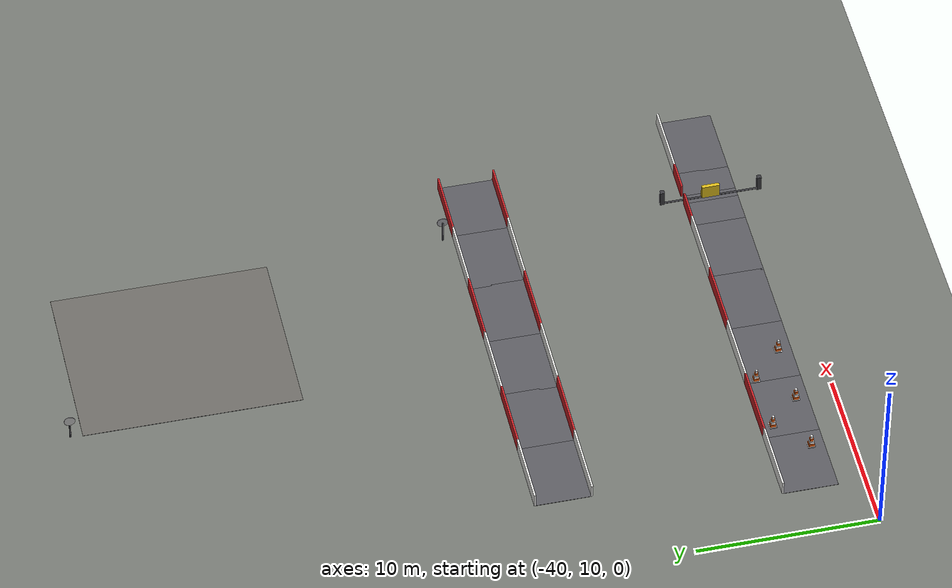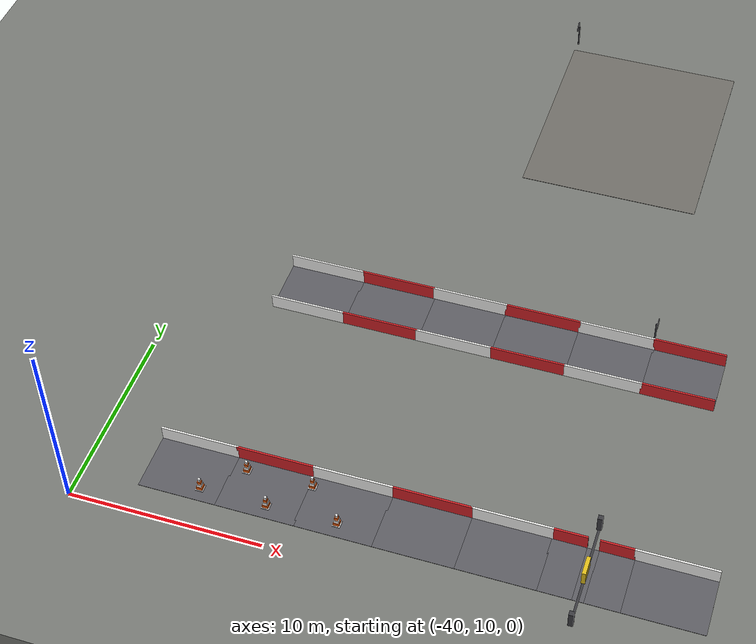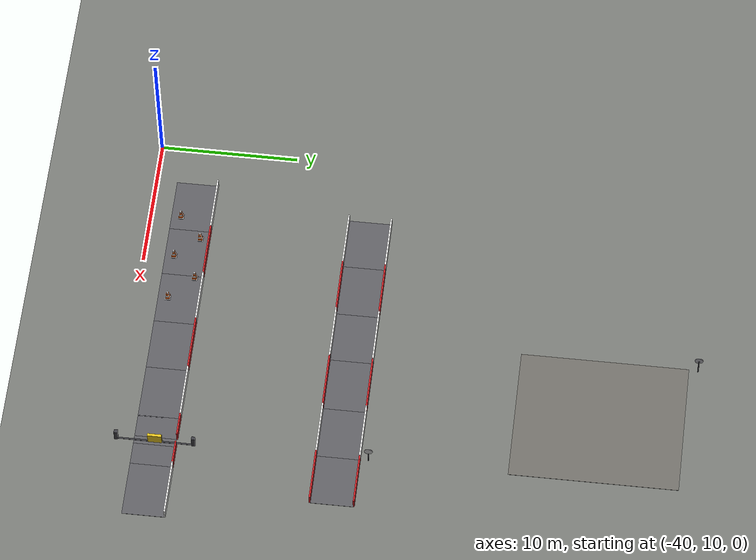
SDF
<sdf version="1.10">
 <world name="ika_parkur">
  <model name="ground_north">
   <static>true</static>
   <pose>-35 34.485 -0.52 0 0 0</pose>
   <link name="ground_north_link">
    <collision name="ground_north_link_collision">
     <geometry><box><size>116.199336 65.03 1</size></box></geometry>
     <surface>
      <friction><ode><mu>1</mu><mu2>1</mu2></ode></friction>
      <contact><ode><kp>1000000</kp><kd>1</kd></ode></contact>
     </surface>
    </collision>
    <visual name="ground_north_link_visual">
     <geometry><box><size>116.199336 65.03 1</size></box></geometry>
     <material>
      <ambient>0.45 0.46 0.44 1</ambient>
      <diffuse>0.45 0.46 0.44 1</diffuse>
      <specular>0.1 0.1 0.1 1</specular>
     </material>
    </visual>
   </link>
  </model>
  <model name="parkur_road">
   <static>true</static>
   <link name="road_0109">
    <pose>-35 13 -0.1 0 0 0</pose>
    <collision name="road_0109_col">
     <geometry><box><size>4.08 3 0.2</size></box></geometry>
     <surface>
      <friction><ode><mu>1</mu><mu2>1</mu2></ode></friction>
      <contact><ode><kp>1000000</kp><kd>1</kd></ode></contact>
     </surface>
    </collision>
    <visual name="road_0109_vis">
     <geometry><box><size>4.08 3 0.2</size></box></geometry>
     <material>
      <ambient>0.35 0.35 0.37 1</ambient>
      <diffuse>0.35 0.35 0.37 1</diffuse>
      <specular>0.1 0.1 0.1 1</specular>
     </material>
    </visual>
   </link>
   <link name="road_0110">
    <pose>-31 13 -0.1 0 0 0</pose>
    <collision name="road_0110_col">
     <geometry><box><size>4.08 3 0.2</size></box></geometry>
     <surface>
      <friction><ode><mu>1</mu><mu2>1</mu2></ode></friction>
      <contact><ode><kp>1000000</kp><kd>1</kd></ode></contact>
     </surface>
    </collision>
    <visual name="road_0110_vis">
     <geometry><box><size>4.08 3 0.2</size></box></geometry>
     <material>
      <ambient>0.35 0.35 0.37 1</ambient>
      <diffuse>0.35 0.35 0.37 1</diffuse>
      <specular>0.1 0.1 0.1 1</specular>
     </material>
    </visual>
   </link>
   <link name="road_0111">
    <pose>-27 13 -0.1 0 0 0</pose>
    <collision name="road_0111_col">
     <geometry><box><size>4.08 3 0.2</size></box></geometry>
     <surface>
      <friction><ode><mu>1</mu><mu2>1</mu2></ode></friction>
      <contact><ode><kp>1000000</kp><kd>1</kd></ode></contact>
     </surface>
    </collision>
    <visual name="road_0111_vis">
     <geometry><box><size>4.08 3 0.2</size></box></geometry>
     <material>
      <ambient>0.35 0.35 0.37 1</ambient>
      <diffuse>0.35 0.35 0.37 1</diffuse>
      <specular>0.1 0.1 0.1 1</specular>
     </material>
    </visual>
   </link>
   <link name="road_0112">
    <pose>-23 13 -0.1 0 0 0</pose>
    <collision name="road_0112_col">
     <geometry><box><size>4.08 3 0.2</size></box></geometry>
     <surface>
      <friction><ode><mu>1</mu><mu2>1</mu2></ode></friction>
      <contact><ode><kp>1000000</kp><kd>1</kd></ode></contact>
     </surface>
    </collision>
    <visual name="road_0112_vis">
     <geometry><box><size>4.08 3 0.2</size></box></geometry>
     <material>
      <ambient>0.35 0.35 0.37 1</ambient>
      <diffuse>0.35 0.35 0.37 1</diffuse>
      <specular>0.1 0.1 0.1 1</specular>
     </material>
    </visual>
   </link>
   <link name="road_0113">
    <pose>-19 13 -0.1 0 0 0</pose>
    <collision name="road_0113_col">
     <geometry><box><size>4.08 3 0.2</size></box></geometry>
     <surface>
      <friction><ode><mu>1</mu><mu2>1</mu2></ode></friction>
      <contact><ode><kp>1000000</kp><kd>1</kd></ode></contact>
     </surface>
    </collision>
    <visual name="road_0113_vis">
     <geometry><box><size>4.08 3 0.2</size></box></geometry>
     <material>
      <ambient>0.35 0.35 0.37 1</ambient>
      <diffuse>0.35 0.35 0.37 1</diffuse>
      <specular>0.1 0.1 0.1 1</specular>
     </material>
    </visual>
   </link>
   <link name="road_0114">
    <pose>-16.15 13 -0.1 0 0 0</pose>
    <collision name="road_0114_col">
     <geometry><box><size>1.734 3 0.2</size></box></geometry>
     <surface>
      <friction><ode><mu>1</mu><mu2>1</mu2></ode></friction>
      <contact><ode><kp>1000000</kp><kd>1</kd></ode></contact>
     </surface>
    </collision>
    <visual name="road_0114_vis">
     <geometry><box><size>1.734 3 0.2</size></box></geometry>
     <material>
      <ambient>0.35 0.35 0.37 1</ambient>
      <diffuse>0.35 0.35 0.37 1</diffuse>
      <specular>0.1 0.1 0.1 1</specular>
     </material>
    </visual>
   </link>
   <link name="road_0115">
    <pose>-15 13 -0.1 0 0 0</pose>
    <collision name="road_0115_col">
     <geometry><box><size>0.612 3 0.2</size></box></geometry>
     <surface>
      <friction><ode><mu>1</mu><mu2>1</mu2></ode></friction>
      <contact><ode><kp>1000000</kp><kd>1</kd></ode></contact>
     </surface>
    </collision>
    <visual name="road_0115_vis">
     <geometry><box><size>0.612 3 0.2</size></box></geometry>
     <material>
      <ambient>0.35 0.35 0.37 1</ambient>
      <diffuse>0.35 0.35 0.37 1</diffuse>
      <specular>0.1 0.1 0.1 1</specular>
     </material>
    </visual>
   </link>
   <link name="road_0116">
    <pose>-13.85 13 -0.1 0 0 0</pose>
    <collision name="road_0116_col">
     <geometry><box><size>1.734 3 0.2</size></box></geometry>
     <surface>
      <friction><ode><mu>1</mu><mu2>1</mu2></ode></friction>
      <contact><ode><kp>1000000</kp><kd>1</kd></ode></contact>
     </surface>
    </collision>
    <visual name="road_0116_vis">
     <geometry><box><size>1.734 3 0.2</size></box></geometry>
     <material>
      <ambient>0.35 0.35 0.37 1</ambient>
      <diffuse>0.35 0.35 0.37 1</diffuse>
      <specular>0.1 0.1 0.1 1</specular>
     </material>
    </visual>
   </link>
   <link name="road_0117">
    <pose>-11 13 -0.1 0 0 0</pose>
    <collision name="road_0117_col">
     <geometry><box><size>4.08 3 0.2</size></box></geometry>
     <surface>
      <friction><ode><mu>1</mu><mu2>1</mu2></ode></friction>
      <contact><ode><kp>1000000</kp><kd>1</kd></ode></contact>
     </surface>
    </collision>
    <visual name="road_0117_vis">
     <geometry><box><size>4.08 3 0.2</size></box></geometry>
     <material>
      <ambient>0.35 0.35 0.37 1</ambient>
      <diffuse>0.35 0.35 0.37 1</diffuse>
      <specular>0.1 0.1 0.1 1</specular>
     </material>
    </visual>
   </link>
   <link name="road_0144">
    <pose>-13.125 26 -0.1 0 0 3.141593</pose>
    <collision name="road_0144_col">
     <geometry><box><size>3.825 3 0.2</size></box></geometry>
     <surface>
      <friction><ode><mu>1</mu><mu2>1</mu2></ode></friction>
      <contact><ode><kp>1000000</kp><kd>1</kd></ode></contact>
     </surface>
    </collision>
    <visual name="road_0144_vis">
     <geometry><box><size>3.825 3 0.2</size></box></geometry>
     <material>
      <ambient>0.35 0.35 0.37 1</ambient>
      <diffuse>0.35 0.35 0.37 1</diffuse>
      <specular>0.1 0.1 0.1 1</specular>
     </material>
    </visual>
   </link>
   <link name="road_0145">
    <pose>-17 26 -0.1 0 0 3.141593</pose>
    <collision name="road_0145_col">
     <geometry><box><size>4.08 3 0.2</size></box></geometry>
     <surface>
      <friction><ode><mu>1</mu><mu2>1</mu2></ode></friction>
      <contact><ode><kp>1000000</kp><kd>1</kd></ode></contact>
     </surface>
    </collision>
    <visual name="road_0145_vis">
     <geometry><box><size>4.08 3 0.2</size></box></geometry>
     <material>
      <ambient>0.35 0.35 0.37 1</ambient>
      <diffuse>0.35 0.35 0.37 1</diffuse>
      <specular>0.1 0.1 0.1 1</specular>
     </material>
    </visual>
   </link>
   <link name="road_0146">
    <pose>-21 26 -0.1 0 0 3.141593</pose>
    <collision name="road_0146_col">
     <geometry><box><size>4.08 3 0.2</size></box></geometry>
     <surface>
      <friction><ode><mu>1</mu><mu2>1</mu2></ode></friction>
      <contact><ode><kp>1000000</kp><kd>1</kd></ode></contact>
     </surface>
    </collision>
    <visual name="road_0146_vis">
     <geometry><box><size>4.08 3 0.2</size></box></geometry>
     <material>
      <ambient>0.35 0.35 0.37 1</ambient>
      <diffuse>0.35 0.35 0.37 1</diffuse>
      <specular>0.1 0.1 0.1 1</specular>
     </material>
    </visual>
   </link>
   <link name="road_0147">
    <pose>-25 26 -0.1 0 0 3.141593</pose>
    <collision name="road_0147_col">
     <geometry><box><size>4.08 3 0.2</size></box></geometry>
     <surface>
      <friction><ode><mu>1</mu><mu2>1</mu2></ode></friction>
      <contact><ode><kp>1000000</kp><kd>1</kd></ode></contact>
     </surface>
    </collision>
    <visual name="road_0147_vis">
     <geometry><box><size>4.08 3 0.2</size></box></geometry>
     <material>
      <ambient>0.35 0.35 0.37 1</ambient>
      <diffuse>0.35 0.35 0.37 1</diffuse>
      <specular>0.1 0.1 0.1 1</specular>
     </material>
    </visual>
   </link>
   <link name="road_0148">
    <pose>-29 26 -0.1 0 0 3.141593</pose>
    <collision name="road_0148_col">
     <geometry><box><size>4.08 3 0.2</size></box></geometry>
     <surface>
      <friction><ode><mu>1</mu><mu2>1</mu2></ode></friction>
      <contact><ode><kp>1000000</kp><kd>1</kd></ode></contact>
     </surface>
    </collision>
    <visual name="road_0148_vis">
     <geometry><box><size>4.08 3 0.2</size></box></geometry>
     <material>
      <ambient>0.35 0.35 0.37 1</ambient>
      <diffuse>0.35 0.35 0.37 1</diffuse>
      <specular>0.1 0.1 0.1 1</specular>
     </material>
    </visual>
   </link>
   <link name="road_0149">
    <pose>-33 26 -0.1 0 0 3.141593</pose>
    <collision name="road_0149_col">
     <geometry><box><size>4.08 3 0.2</size></box></geometry>
     <surface>
      <friction><ode><mu>1</mu><mu2>1</mu2></ode></friction>
      <contact><ode><kp>1000000</kp><kd>1</kd></ode></contact>
     </surface>
    </collision>
    <visual name="road_0149_vis">
     <geometry><box><size>4.08 3 0.2</size></box></geometry>
     <material>
      <ambient>0.35 0.35 0.37 1</ambient>
      <diffuse>0.35 0.35 0.37 1</diffuse>
      <specular>0.1 0.1 0.1 1</specular>
     </material>
    </visual>
   </link>
  </model>
  <model name="parkur_barriers">
   <static>true</static>
   <link name="barrier_l_0109">
    <pose>-35 14.55 0.4 0 0 0</pose>
    <collision name="barrier_l_0109_col">
     <geometry><box><size>4.08 0.1 0.8</size></box></geometry>
     <surface>
      <friction><ode><mu>0.6</mu><mu2>0.6</mu2></ode></friction>
      <contact><ode><kp>1000000</kp><kd>1</kd></ode></contact>
     </surface>
    </collision>
    <visual name="barrier_l_0109_vis">
     <geometry><box><size>4.08 0.1 0.8</size></box></geometry>
     <material>
      <ambient>0.93 0.93 0.92 1</ambient>
      <diffuse>0.93 0.93 0.92 1</diffuse>
      <specular>0.1 0.1 0.1 1</specular>
     </material>
    </visual>
   </link>
   <link name="barrier_l_0110">
    <pose>-31 14.55 0.4 0 0 0</pose>
    <collision name="barrier_l_0110_col">
     <geometry><box><size>4.08 0.1 0.8</size></box></geometry>
     <surface>
      <friction><ode><mu>0.6</mu><mu2>0.6</mu2></ode></friction>
      <contact><ode><kp>1000000</kp><kd>1</kd></ode></contact>
     </surface>
    </collision>
    <visual name="barrier_l_0110_vis">
     <geometry><box><size>4.08 0.1 0.8</size></box></geometry>
     <material>
      <ambient>0.81 0.13 0.15 1</ambient>
      <diffuse>0.81 0.13 0.15 1</diffuse>
      <specular>0.1 0.1 0.1 1</specular>
     </material>
    </visual>
   </link>
   <link name="barrier_l_0111">
    <pose>-27 14.55 0.4 0 0 0</pose>
    <collision name="barrier_l_0111_col">
     <geometry><box><size>4.08 0.1 0.8</size></box></geometry>
     <surface>
      <friction><ode><mu>0.6</mu><mu2>0.6</mu2></ode></friction>
      <contact><ode><kp>1000000</kp><kd>1</kd></ode></contact>
     </surface>
    </collision>
    <visual name="barrier_l_0111_vis">
     <geometry><box><size>4.08 0.1 0.8</size></box></geometry>
     <material>
      <ambient>0.93 0.93 0.92 1</ambient>
      <diffuse>0.93 0.93 0.92 1</diffuse>
      <specular>0.1 0.1 0.1 1</specular>
     </material>
    </visual>
   </link>
   <link name="barrier_l_0112">
    <pose>-23 14.55 0.4 0 0 0</pose>
    <collision name="barrier_l_0112_col">
     <geometry><box><size>4.08 0.1 0.8</size></box></geometry>
     <surface>
      <friction><ode><mu>0.6</mu><mu2>0.6</mu2></ode></friction>
      <contact><ode><kp>1000000</kp><kd>1</kd></ode></contact>
     </surface>
    </collision>
    <visual name="barrier_l_0112_vis">
     <geometry><box><size>4.08 0.1 0.8</size></box></geometry>
     <material>
      <ambient>0.81 0.13 0.15 1</ambient>
      <diffuse>0.81 0.13 0.15 1</diffuse>
      <specular>0.1 0.1 0.1 1</specular>
     </material>
    </visual>
   </link>
   <link name="barrier_l_0113">
    <pose>-19 14.55 0.4 0 0 0</pose>
    <collision name="barrier_l_0113_col">
     <geometry><box><size>4.08 0.1 0.8</size></box></geometry>
     <surface>
      <friction><ode><mu>0.6</mu><mu2>0.6</mu2></ode></friction>
      <contact><ode><kp>1000000</kp><kd>1</kd></ode></contact>
     </surface>
    </collision>
    <visual name="barrier_l_0113_vis">
     <geometry><box><size>4.08 0.1 0.8</size></box></geometry>
     <material>
      <ambient>0.93 0.93 0.92 1</ambient>
      <diffuse>0.93 0.93 0.92 1</diffuse>
      <specular>0.1 0.1 0.1 1</specular>
     </material>
    </visual>
   </link>
   <link name="barrier_l_0114">
    <pose>-16.15 14.55 0.4 0 0 0</pose>
    <collision name="barrier_l_0114_col">
     <geometry><box><size>1.734 0.1 0.8</size></box></geometry>
     <surface>
      <friction><ode><mu>0.6</mu><mu2>0.6</mu2></ode></friction>
      <contact><ode><kp>1000000</kp><kd>1</kd></ode></contact>
     </surface>
    </collision>
    <visual name="barrier_l_0114_vis">
     <geometry><box><size>1.734 0.1 0.8</size></box></geometry>
     <material>
      <ambient>0.81 0.13 0.15 1</ambient>
      <diffuse>0.81 0.13 0.15 1</diffuse>
      <specular>0.1 0.1 0.1 1</specular>
     </material>
    </visual>
   </link>
   <link name="barrier_l_0116">
    <pose>-13.85 14.55 0.4 0 0 0</pose>
    <collision name="barrier_l_0116_col">
     <geometry><box><size>1.734 0.1 0.8</size></box></geometry>
     <surface>
      <friction><ode><mu>0.6</mu><mu2>0.6</mu2></ode></friction>
      <contact><ode><kp>1000000</kp><kd>1</kd></ode></contact>
     </surface>
    </collision>
    <visual name="barrier_l_0116_vis">
     <geometry><box><size>1.734 0.1 0.8</size></box></geometry>
     <material>
      <ambient>0.81 0.13 0.15 1</ambient>
      <diffuse>0.81 0.13 0.15 1</diffuse>
      <specular>0.1 0.1 0.1 1</specular>
     </material>
    </visual>
   </link>
   <link name="barrier_l_0117">
    <pose>-11 14.55 0.4 0 0 0</pose>
    <collision name="barrier_l_0117_col">
     <geometry><box><size>4.08 0.1 0.8</size></box></geometry>
     <surface>
      <friction><ode><mu>0.6</mu><mu2>0.6</mu2></ode></friction>
      <contact><ode><kp>1000000</kp><kd>1</kd></ode></contact>
     </surface>
    </collision>
    <visual name="barrier_l_0117_vis">
     <geometry><box><size>4.08 0.1 0.8</size></box></geometry>
     <material>
      <ambient>0.93 0.93 0.92 1</ambient>
      <diffuse>0.93 0.93 0.92 1</diffuse>
      <specular>0.1 0.1 0.1 1</specular>
     </material>
    </visual>
   </link>
   <link name="barrier_l_0144">
    <pose>-13.125 24.45 0.4 0 0 3.141593</pose>
    <collision name="barrier_l_0144_col">
     <geometry><box><size>3.825 0.1 0.8</size></box></geometry>
     <surface>
      <friction><ode><mu>0.6</mu><mu2>0.6</mu2></ode></friction>
      <contact><ode><kp>1000000</kp><kd>1</kd></ode></contact>
     </surface>
    </collision>
    <visual name="barrier_l_0144_vis">
     <geometry><box><size>3.825 0.1 0.8</size></box></geometry>
     <material>
      <ambient>0.81 0.13 0.15 1</ambient>
      <diffuse>0.81 0.13 0.15 1</diffuse>
      <specular>0.1 0.1 0.1 1</specular>
     </material>
    </visual>
   </link>
   <link name="barrier_r_0144">
    <pose>-13.125 27.55 0.4 0 0 3.141593</pose>
    <collision name="barrier_r_0144_col">
     <geometry><box><size>3.825 0.1 0.8</size></box></geometry>
     <surface>
      <friction><ode><mu>0.6</mu><mu2>0.6</mu2></ode></friction>
      <contact><ode><kp>1000000</kp><kd>1</kd></ode></contact>
     </surface>
    </collision>
    <visual name="barrier_r_0144_vis">
     <geometry><box><size>3.825 0.1 0.8</size></box></geometry>
     <material>
      <ambient>0.81 0.13 0.15 1</ambient>
      <diffuse>0.81 0.13 0.15 1</diffuse>
      <specular>0.1 0.1 0.1 1</specular>
     </material>
    </visual>
   </link>
   <link name="barrier_l_0145">
    <pose>-17 24.45 0.4 0 0 3.141593</pose>
    <collision name="barrier_l_0145_col">
     <geometry><box><size>4.08 0.1 0.8</size></box></geometry>
     <surface>
      <friction><ode><mu>0.6</mu><mu2>0.6</mu2></ode></friction>
      <contact><ode><kp>1000000</kp><kd>1</kd></ode></contact>
     </surface>
    </collision>
    <visual name="barrier_l_0145_vis">
     <geometry><box><size>4.08 0.1 0.8</size></box></geometry>
     <material>
      <ambient>0.93 0.93 0.92 1</ambient>
      <diffuse>0.93 0.93 0.92 1</diffuse>
      <specular>0.1 0.1 0.1 1</specular>
     </material>
    </visual>
   </link>
   <link name="barrier_r_0145">
    <pose>-17 27.55 0.4 0 0 3.141593</pose>
    <collision name="barrier_r_0145_col">
     <geometry><box><size>4.08 0.1 0.8</size></box></geometry>
     <surface>
      <friction><ode><mu>0.6</mu><mu2>0.6</mu2></ode></friction>
      <contact><ode><kp>1000000</kp><kd>1</kd></ode></contact>
     </surface>
    </collision>
    <visual name="barrier_r_0145_vis">
     <geometry><box><size>4.08 0.1 0.8</size></box></geometry>
     <material>
      <ambient>0.93 0.93 0.92 1</ambient>
      <diffuse>0.93 0.93 0.92 1</diffuse>
      <specular>0.1 0.1 0.1 1</specular>
     </material>
    </visual>
   </link>
   <link name="barrier_l_0146">
    <pose>-21 24.45 0.4 0 0 3.141593</pose>
    <collision name="barrier_l_0146_col">
     <geometry><box><size>4.08 0.1 0.8</size></box></geometry>
     <surface>
      <friction><ode><mu>0.6</mu><mu2>0.6</mu2></ode></friction>
      <contact><ode><kp>1000000</kp><kd>1</kd></ode></contact>
     </surface>
    </collision>
    <visual name="barrier_l_0146_vis">
     <geometry><box><size>4.08 0.1 0.8</size></box></geometry>
     <material>
      <ambient>0.81 0.13 0.15 1</ambient>
      <diffuse>0.81 0.13 0.15 1</diffuse>
      <specular>0.1 0.1 0.1 1</specular>
     </material>
    </visual>
   </link>
   <link name="barrier_r_0146">
    <pose>-21 27.55 0.4 0 0 3.141593</pose>
    <collision name="barrier_r_0146_col">
     <geometry><box><size>4.08 0.1 0.8</size></box></geometry>
     <surface>
      <friction><ode><mu>0.6</mu><mu2>0.6</mu2></ode></friction>
      <contact><ode><kp>1000000</kp><kd>1</kd></ode></contact>
     </surface>
    </collision>
    <visual name="barrier_r_0146_vis">
     <geometry><box><size>4.08 0.1 0.8</size></box></geometry>
     <material>
      <ambient>0.81 0.13 0.15 1</ambient>
      <diffuse>0.81 0.13 0.15 1</diffuse>
      <specular>0.1 0.1 0.1 1</specular>
     </material>
    </visual>
   </link>
   <link name="barrier_l_0147">
    <pose>-25 24.45 0.4 0 0 3.141593</pose>
    <collision name="barrier_l_0147_col">
     <geometry><box><size>4.08 0.1 0.8</size></box></geometry>
     <surface>
      <friction><ode><mu>0.6</mu><mu2>0.6</mu2></ode></friction>
      <contact><ode><kp>1000000</kp><kd>1</kd></ode></contact>
     </surface>
    </collision>
    <visual name="barrier_l_0147_vis">
     <geometry><box><size>4.08 0.1 0.8</size></box></geometry>
     <material>
      <ambient>0.93 0.93 0.92 1</ambient>
      <diffuse>0.93 0.93 0.92 1</diffuse>
      <specular>0.1 0.1 0.1 1</specular>
     </material>
    </visual>
   </link>
   <link name="barrier_r_0147">
    <pose>-25 27.55 0.4 0 0 3.141593</pose>
    <collision name="barrier_r_0147_col">
     <geometry><box><size>4.08 0.1 0.8</size></box></geometry>
     <surface>
      <friction><ode><mu>0.6</mu><mu2>0.6</mu2></ode></friction>
      <contact><ode><kp>1000000</kp><kd>1</kd></ode></contact>
     </surface>
    </collision>
    <visual name="barrier_r_0147_vis">
     <geometry><box><size>4.08 0.1 0.8</size></box></geometry>
     <material>
      <ambient>0.93 0.93 0.92 1</ambient>
      <diffuse>0.93 0.93 0.92 1</diffuse>
      <specular>0.1 0.1 0.1 1</specular>
     </material>
    </visual>
   </link>
   <link name="barrier_l_0148">
    <pose>-29 24.45 0.4 0 0 3.141593</pose>
    <collision name="barrier_l_0148_col">
     <geometry><box><size>4.08 0.1 0.8</size></box></geometry>
     <surface>
      <friction><ode><mu>0.6</mu><mu2>0.6</mu2></ode></friction>
      <contact><ode><kp>1000000</kp><kd>1</kd></ode></contact>
     </surface>
    </collision>
    <visual name="barrier_l_0148_vis">
     <geometry><box><size>4.08 0.1 0.8</size></box></geometry>
     <material>
      <ambient>0.81 0.13 0.15 1</ambient>
      <diffuse>0.81 0.13 0.15 1</diffuse>
      <specular>0.1 0.1 0.1 1</specular>
     </material>
    </visual>
   </link>
   <link name="barrier_r_0148">
    <pose>-29 27.55 0.4 0 0 3.141593</pose>
    <collision name="barrier_r_0148_col">
     <geometry><box><size>4.08 0.1 0.8</size></box></geometry>
     <surface>
      <friction><ode><mu>0.6</mu><mu2>0.6</mu2></ode></friction>
      <contact><ode><kp>1000000</kp><kd>1</kd></ode></contact>
     </surface>
    </collision>
    <visual name="barrier_r_0148_vis">
     <geometry><box><size>4.08 0.1 0.8</size></box></geometry>
     <material>
      <ambient>0.81 0.13 0.15 1</ambient>
      <diffuse>0.81 0.13 0.15 1</diffuse>
      <specular>0.1 0.1 0.1 1</specular>
     </material>
    </visual>
   </link>
   <link name="barrier_l_0149">
    <pose>-33 24.45 0.4 0 0 3.141593</pose>
    <collision name="barrier_l_0149_col">
     <geometry><box><size>4.08 0.1 0.8</size></box></geometry>
     <surface>
      <friction><ode><mu>0.6</mu><mu2>0.6</mu2></ode></friction>
      <contact><ode><kp>1000000</kp><kd>1</kd></ode></contact>
     </surface>
    </collision>
    <visual name="barrier_l_0149_vis">
     <geometry><box><size>4.08 0.1 0.8</size></box></geometry>
     <material>
      <ambient>0.93 0.93 0.92 1</ambient>
      <diffuse>0.93 0.93 0.92 1</diffuse>
      <specular>0.1 0.1 0.1 1</specular>
     </material>
    </visual>
   </link>
   <link name="barrier_r_0149">
    <pose>-33 27.55 0.4 0 0 3.141593</pose>
    <collision name="barrier_r_0149_col">
     <geometry><box><size>4.08 0.1 0.8</size></box></geometry>
     <surface>
      <friction><ode><mu>0.6</mu><mu2>0.6</mu2></ode></friction>
      <contact><ode><kp>1000000</kp><kd>1</kd></ode></contact>
     </surface>
    </collision>
    <visual name="barrier_r_0149_vis">
     <geometry><box><size>4.08 0.1 0.8</size></box></geometry>
     <material>
      <ambient>0.93 0.93 0.92 1</ambient>
      <diffuse>0.93 0.93 0.92 1</diffuse>
      <specular>0.1 0.1 0.1 1</specular>
     </material>
    </visual>
   </link>
  </model>
  <model name="trafik_konisi_05">
   <static>false</static>
   <pose>-34.055782 12.214348 0 0 0 0</pose>
   <link name="cone05_link">
    <inertial>
     <pose>0 0 0.238568 0 0 0</pose>
     <mass>0.8</mass>
     <inertia>
      <ixx>0.033024</ixx>
      <iyy>0.033024</iyy>
      <izz>0.011175</izz>
      <ixy>0</ixy>
      <ixz>0</ixz>
      <iyz>0</iyz>
     </inertia>
    </inertial>
    <collision name="cone05_base_col">
     <pose>0 0 0.02 0 0 0</pose>
     <geometry><box><size>0.4 0.4 0.04</size></box></geometry>
     <surface>
      <friction><ode><mu>1</mu><mu2>1</mu2></ode></friction>
      <contact><ode><kp>1000000</kp><kd>1</kd></ode></contact>
     </surface>
    </collision>
    <visual name="cone05_base_vis">
     <pose>0 0 0.02 0 0 0</pose>
     <geometry><box><size>0.4 0.4 0.04</size></box></geometry>
     <material>
      <ambient>0.92 0.92 0.92 1</ambient>
      <diffuse>0.92 0.92 0.92 1</diffuse>
      <specular>0.1 0.1 0.1 1</specular>
     </material>
    </visual>
    <collision name="cone05_t0_col">
     <pose>0 0 0.12875 0 0 0</pose>
     <geometry><box><size>0.312 0.312 0.1775</size></box></geometry>
     <surface>
      <friction><ode><mu>0.8</mu><mu2>0.8</mu2></ode></friction>
      <contact><ode><kp>1000000</kp><kd>1</kd></ode></contact>
     </surface>
    </collision>
    <visual name="cone05_t0_vis">
     <pose>0 0 0.12875 0 0 0</pose>
     <geometry><box><size>0.312 0.312 0.1775</size></box></geometry>
     <material>
      <ambient>0.9 0.35 0.05 1</ambient>
      <diffuse>0.9 0.35 0.05 1</diffuse>
      <specular>0.1 0.1 0.1 1</specular>
     </material>
    </visual>
    <collision name="cone05_t1_col">
     <pose>0 0 0.30625 0 0 0</pose>
     <geometry><box><size>0.24804 0.24804 0.1775</size></box></geometry>
     <surface>
      <friction><ode><mu>0.8</mu><mu2>0.8</mu2></ode></friction>
      <contact><ode><kp>1000000</kp><kd>1</kd></ode></contact>
     </surface>
    </collision>
    <visual name="cone05_t1_vis">
     <pose>0 0 0.30625 0 0 0</pose>
     <geometry><box><size>0.24804 0.24804 0.1775</size></box></geometry>
     <material>
      <ambient>0.92 0.92 0.92 1</ambient>
      <diffuse>0.92 0.92 0.92 1</diffuse>
      <specular>0.1 0.1 0.1 1</specular>
     </material>
    </visual>
    <collision name="cone05_t2_col">
     <pose>0 0 0.48375 0 0 0</pose>
     <geometry><box><size>0.18408 0.18408 0.1775</size></box></geometry>
     <surface>
      <friction><ode><mu>0.8</mu><mu2>0.8</mu2></ode></friction>
      <contact><ode><kp>1000000</kp><kd>1</kd></ode></contact>
     </surface>
    </collision>
    <visual name="cone05_t2_vis">
     <pose>0 0 0.48375 0 0 0</pose>
     <geometry><box><size>0.18408 0.18408 0.1775</size></box></geometry>
     <material>
      <ambient>0.9 0.35 0.05 1</ambient>
      <diffuse>0.9 0.35 0.05 1</diffuse>
      <specular>0.1 0.1 0.1 1</specular>
     </material>
    </visual>
    <collision name="cone05_t3_col">
     <pose>0 0 0.66125 0 0 0</pose>
     <geometry><box><size>0.12012 0.12012 0.1775</size></box></geometry>
     <surface>
      <friction><ode><mu>0.8</mu><mu2>0.8</mu2></ode></friction>
      <contact><ode><kp>1000000</kp><kd>1</kd></ode></contact>
     </surface>
    </collision>
    <visual name="cone05_t3_vis">
     <pose>0 0 0.66125 0 0 0</pose>
     <geometry><box><size>0.12012 0.12012 0.1775</size></box></geometry>
     <material>
      <ambient>0.92 0.92 0.92 1</ambient>
      <diffuse>0.92 0.92 0.92 1</diffuse>
      <specular>0.1 0.1 0.1 1</specular>
     </material>
    </visual>
   </link>
  </model>
  <model name="trafik_konisi_06">
   <static>false</static>
   <pose>-32.273087 13.870765 0 0 0 0</pose>
   <link name="cone06_link">
    <inertial>
     <pose>0 0 0.238568 0 0 0</pose>
     <mass>0.8</mass>
     <inertia>
      <ixx>0.033024</ixx>
      <iyy>0.033024</iyy>
      <izz>0.011175</izz>
      <ixy>0</ixy>
      <ixz>0</ixz>
      <iyz>0</iyz>
     </inertia>
    </inertial>
    <collision name="cone06_base_col">
     <pose>0 0 0.02 0 0 0</pose>
     <geometry><box><size>0.4 0.4 0.04</size></box></geometry>
     <surface>
      <friction><ode><mu>1</mu><mu2>1</mu2></ode></friction>
      <contact><ode><kp>1000000</kp><kd>1</kd></ode></contact>
     </surface>
    </collision>
    <visual name="cone06_base_vis">
     <pose>0 0 0.02 0 0 0</pose>
     <geometry><box><size>0.4 0.4 0.04</size></box></geometry>
     <material>
      <ambient>0.92 0.92 0.92 1</ambient>
      <diffuse>0.92 0.92 0.92 1</diffuse>
      <specular>0.1 0.1 0.1 1</specular>
     </material>
    </visual>
    <collision name="cone06_t0_col">
     <pose>0 0 0.12875 0 0 0</pose>
     <geometry><box><size>0.312 0.312 0.1775</size></box></geometry>
     <surface>
      <friction><ode><mu>0.8</mu><mu2>0.8</mu2></ode></friction>
      <contact><ode><kp>1000000</kp><kd>1</kd></ode></contact>
     </surface>
    </collision>
    <visual name="cone06_t0_vis">
     <pose>0 0 0.12875 0 0 0</pose>
     <geometry><box><size>0.312 0.312 0.1775</size></box></geometry>
     <material>
      <ambient>0.9 0.35 0.05 1</ambient>
      <diffuse>0.9 0.35 0.05 1</diffuse>
      <specular>0.1 0.1 0.1 1</specular>
     </material>
    </visual>
    <collision name="cone06_t1_col">
     <pose>0 0 0.30625 0 0 0</pose>
     <geometry><box><size>0.24804 0.24804 0.1775</size></box></geometry>
     <surface>
      <friction><ode><mu>0.8</mu><mu2>0.8</mu2></ode></friction>
      <contact><ode><kp>1000000</kp><kd>1</kd></ode></contact>
     </surface>
    </collision>
    <visual name="cone06_t1_vis">
     <pose>0 0 0.30625 0 0 0</pose>
     <geometry><box><size>0.24804 0.24804 0.1775</size></box></geometry>
     <material>
      <ambient>0.92 0.92 0.92 1</ambient>
      <diffuse>0.92 0.92 0.92 1</diffuse>
      <specular>0.1 0.1 0.1 1</specular>
     </material>
    </visual>
    <collision name="cone06_t2_col">
     <pose>0 0 0.48375 0 0 0</pose>
     <geometry><box><size>0.18408 0.18408 0.1775</size></box></geometry>
     <surface>
      <friction><ode><mu>0.8</mu><mu2>0.8</mu2></ode></friction>
      <contact><ode><kp>1000000</kp><kd>1</kd></ode></contact>
     </surface>
    </collision>
    <visual name="cone06_t2_vis">
     <pose>0 0 0.48375 0 0 0</pose>
     <geometry><box><size>0.18408 0.18408 0.1775</size></box></geometry>
     <material>
      <ambient>0.9 0.35 0.05 1</ambient>
      <diffuse>0.9 0.35 0.05 1</diffuse>
      <specular>0.1 0.1 0.1 1</specular>
     </material>
    </visual>
    <collision name="cone06_t3_col">
     <pose>0 0 0.66125 0 0 0</pose>
     <geometry><box><size>0.12012 0.12012 0.1775</size></box></geometry>
     <surface>
      <friction><ode><mu>0.8</mu><mu2>0.8</mu2></ode></friction>
      <contact><ode><kp>1000000</kp><kd>1</kd></ode></contact>
     </surface>
    </collision>
    <visual name="cone06_t3_vis">
     <pose>0 0 0.66125 0 0 0</pose>
     <geometry><box><size>0.12012 0.12012 0.1775</size></box></geometry>
     <material>
      <ambient>0.92 0.92 0.92 1</ambient>
      <diffuse>0.92 0.92 0.92 1</diffuse>
      <specular>0.1 0.1 0.1 1</specular>
     </material>
    </visual>
   </link>
  </model>
  <model name="trafik_konisi_07">
   <static>false</static>
   <pose>-30.617971 12.177409 0 0 0 0</pose>
   <link name="cone07_link">
    <inertial>
     <pose>0 0 0.238568 0 0 0</pose>
     <mass>0.8</mass>
     <inertia>
      <ixx>0.033024</ixx>
      <iyy>0.033024</iyy>
      <izz>0.011175</izz>
      <ixy>0</ixy>
      <ixz>0</ixz>
      <iyz>0</iyz>
     </inertia>
    </inertial>
    <collision name="cone07_base_col">
     <pose>0 0 0.02 0 0 0</pose>
     <geometry><box><size>0.4 0.4 0.04</size></box></geometry>
     <surface>
      <friction><ode><mu>1</mu><mu2>1</mu2></ode></friction>
      <contact><ode><kp>1000000</kp><kd>1</kd></ode></contact>
     </surface>
    </collision>
    <visual name="cone07_base_vis">
     <pose>0 0 0.02 0 0 0</pose>
     <geometry><box><size>0.4 0.4 0.04</size></box></geometry>
     <material>
      <ambient>0.92 0.92 0.92 1</ambient>
      <diffuse>0.92 0.92 0.92 1</diffuse>
      <specular>0.1 0.1 0.1 1</specular>
     </material>
    </visual>
    <collision name="cone07_t0_col">
     <pose>0 0 0.12875 0 0 0</pose>
     <geometry><box><size>0.312 0.312 0.1775</size></box></geometry>
     <surface>
      <friction><ode><mu>0.8</mu><mu2>0.8</mu2></ode></friction>
      <contact><ode><kp>1000000</kp><kd>1</kd></ode></contact>
     </surface>
    </collision>
    <visual name="cone07_t0_vis">
     <pose>0 0 0.12875 0 0 0</pose>
     <geometry><box><size>0.312 0.312 0.1775</size></box></geometry>
     <material>
      <ambient>0.9 0.35 0.05 1</ambient>
      <diffuse>0.9 0.35 0.05 1</diffuse>
      <specular>0.1 0.1 0.1 1</specular>
     </material>
    </visual>
    <collision name="cone07_t1_col">
     <pose>0 0 0.30625 0 0 0</pose>
     <geometry><box><size>0.24804 0.24804 0.1775</size></box></geometry>
     <surface>
      <friction><ode><mu>0.8</mu><mu2>0.8</mu2></ode></friction>
      <contact><ode><kp>1000000</kp><kd>1</kd></ode></contact>
     </surface>
    </collision>
    <visual name="cone07_t1_vis">
     <pose>0 0 0.30625 0 0 0</pose>
     <geometry><box><size>0.24804 0.24804 0.1775</size></box></geometry>
     <material>
      <ambient>0.92 0.92 0.92 1</ambient>
      <diffuse>0.92 0.92 0.92 1</diffuse>
      <specular>0.1 0.1 0.1 1</specular>
     </material>
    </visual>
    <collision name="cone07_t2_col">
     <pose>0 0 0.48375 0 0 0</pose>
     <geometry><box><size>0.18408 0.18408 0.1775</size></box></geometry>
     <surface>
      <friction><ode><mu>0.8</mu><mu2>0.8</mu2></ode></friction>
      <contact><ode><kp>1000000</kp><kd>1</kd></ode></contact>
     </surface>
    </collision>
    <visual name="cone07_t2_vis">
     <pose>0 0 0.48375 0 0 0</pose>
     <geometry><box><size>0.18408 0.18408 0.1775</size></box></geometry>
     <material>
      <ambient>0.9 0.35 0.05 1</ambient>
      <diffuse>0.9 0.35 0.05 1</diffuse>
      <specular>0.1 0.1 0.1 1</specular>
     </material>
    </visual>
    <collision name="cone07_t3_col">
     <pose>0 0 0.66125 0 0 0</pose>
     <geometry><box><size>0.12012 0.12012 0.1775</size></box></geometry>
     <surface>
      <friction><ode><mu>0.8</mu><mu2>0.8</mu2></ode></friction>
      <contact><ode><kp>1000000</kp><kd>1</kd></ode></contact>
     </surface>
    </collision>
    <visual name="cone07_t3_vis">
     <pose>0 0 0.66125 0 0 0</pose>
     <geometry><box><size>0.12012 0.12012 0.1775</size></box></geometry>
     <material>
      <ambient>0.92 0.92 0.92 1</ambient>
      <diffuse>0.92 0.92 0.92 1</diffuse>
      <specular>0.1 0.1 0.1 1</specular>
     </material>
    </visual>
   </link>
  </model>
  <model name="trafik_konisi_08">
   <static>false</static>
   <pose>-28.871201 13.926023 0 0 0 0</pose>
   <link name="cone08_link">
    <inertial>
     <pose>0 0 0.238568 0 0 0</pose>
     <mass>0.8</mass>
     <inertia>
      <ixx>0.033024</ixx>
      <iyy>0.033024</iyy>
      <izz>0.011175</izz>
      <ixy>0</ixy>
      <ixz>0</ixz>
      <iyz>0</iyz>
     </inertia>
    </inertial>
    <collision name="cone08_base_col">
     <pose>0 0 0.02 0 0 0</pose>
     <geometry><box><size>0.4 0.4 0.04</size></box></geometry>
     <surface>
      <friction><ode><mu>1</mu><mu2>1</mu2></ode></friction>
      <contact><ode><kp>1000000</kp><kd>1</kd></ode></contact>
     </surface>
    </collision>
    <visual name="cone08_base_vis">
     <pose>0 0 0.02 0 0 0</pose>
     <geometry><box><size>0.4 0.4 0.04</size></box></geometry>
     <material>
      <ambient>0.92 0.92 0.92 1</ambient>
      <diffuse>0.92 0.92 0.92 1</diffuse>
      <specular>0.1 0.1 0.1 1</specular>
     </material>
    </visual>
    <collision name="cone08_t0_col">
     <pose>0 0 0.12875 0 0 0</pose>
     <geometry><box><size>0.312 0.312 0.1775</size></box></geometry>
     <surface>
      <friction><ode><mu>0.8</mu><mu2>0.8</mu2></ode></friction>
      <contact><ode><kp>1000000</kp><kd>1</kd></ode></contact>
     </surface>
    </collision>
    <visual name="cone08_t0_vis">
     <pose>0 0 0.12875 0 0 0</pose>
     <geometry><box><size>0.312 0.312 0.1775</size></box></geometry>
     <material>
      <ambient>0.9 0.35 0.05 1</ambient>
      <diffuse>0.9 0.35 0.05 1</diffuse>
      <specular>0.1 0.1 0.1 1</specular>
     </material>
    </visual>
    <collision name="cone08_t1_col">
     <pose>0 0 0.30625 0 0 0</pose>
     <geometry><box><size>0.24804 0.24804 0.1775</size></box></geometry>
     <surface>
      <friction><ode><mu>0.8</mu><mu2>0.8</mu2></ode></friction>
      <contact><ode><kp>1000000</kp><kd>1</kd></ode></contact>
     </surface>
    </collision>
    <visual name="cone08_t1_vis">
     <pose>0 0 0.30625 0 0 0</pose>
     <geometry><box><size>0.24804 0.24804 0.1775</size></box></geometry>
     <material>
      <ambient>0.92 0.92 0.92 1</ambient>
      <diffuse>0.92 0.92 0.92 1</diffuse>
      <specular>0.1 0.1 0.1 1</specular>
     </material>
    </visual>
    <collision name="cone08_t2_col">
     <pose>0 0 0.48375 0 0 0</pose>
     <geometry><box><size>0.18408 0.18408 0.1775</size></box></geometry>
     <surface>
      <friction><ode><mu>0.8</mu><mu2>0.8</mu2></ode></friction>
      <contact><ode><kp>1000000</kp><kd>1</kd></ode></contact>
     </surface>
    </collision>
    <visual name="cone08_t2_vis">
     <pose>0 0 0.48375 0 0 0</pose>
     <geometry><box><size>0.18408 0.18408 0.1775</size></box></geometry>
     <material>
      <ambient>0.9 0.35 0.05 1</ambient>
      <diffuse>0.9 0.35 0.05 1</diffuse>
      <specular>0.1 0.1 0.1 1</specular>
     </material>
    </visual>
    <collision name="cone08_t3_col">
     <pose>0 0 0.66125 0 0 0</pose>
     <geometry><box><size>0.12012 0.12012 0.1775</size></box></geometry>
     <surface>
      <friction><ode><mu>0.8</mu><mu2>0.8</mu2></ode></friction>
      <contact><ode><kp>1000000</kp><kd>1</kd></ode></contact>
     </surface>
    </collision>
    <visual name="cone08_t3_vis">
     <pose>0 0 0.66125 0 0 0</pose>
     <geometry><box><size>0.12012 0.12012 0.1775</size></box></geometry>
     <material>
      <ambient>0.92 0.92 0.92 1</ambient>
      <diffuse>0.92 0.92 0.92 1</diffuse>
      <specular>0.1 0.1 0.1 1</specular>
     </material>
    </visual>
   </link>
  </model>
  <model name="trafik_konisi_09">
   <static>false</static>
   <pose>-27.012083 12.225543 0 0 0 0</pose>
   <link name="cone09_link">
    <inertial>
     <pose>0 0 0.238568 0 0 0</pose>
     <mass>0.8</mass>
     <inertia>
      <ixx>0.033024</ixx>
      <iyy>0.033024</iyy>
      <izz>0.011175</izz>
      <ixy>0</ixy>
      <ixz>0</ixz>
      <iyz>0</iyz>
     </inertia>
    </inertial>
    <collision name="cone09_base_col">
     <pose>0 0 0.02 0 0 0</pose>
     <geometry><box><size>0.4 0.4 0.04</size></box></geometry>
     <surface>
      <friction><ode><mu>1</mu><mu2>1</mu2></ode></friction>
      <contact><ode><kp>1000000</kp><kd>1</kd></ode></contact>
     </surface>
    </collision>
    <visual name="cone09_base_vis">
     <pose>0 0 0.02 0 0 0</pose>
     <geometry><box><size>0.4 0.4 0.04</size></box></geometry>
     <material>
      <ambient>0.92 0.92 0.92 1</ambient>
      <diffuse>0.92 0.92 0.92 1</diffuse>
      <specular>0.1 0.1 0.1 1</specular>
     </material>
    </visual>
    <collision name="cone09_t0_col">
     <pose>0 0 0.12875 0 0 0</pose>
     <geometry><box><size>0.312 0.312 0.1775</size></box></geometry>
     <surface>
      <friction><ode><mu>0.8</mu><mu2>0.8</mu2></ode></friction>
      <contact><ode><kp>1000000</kp><kd>1</kd></ode></contact>
     </surface>
    </collision>
    <visual name="cone09_t0_vis">
     <pose>0 0 0.12875 0 0 0</pose>
     <geometry><box><size>0.312 0.312 0.1775</size></box></geometry>
     <material>
      <ambient>0.9 0.35 0.05 1</ambient>
      <diffuse>0.9 0.35 0.05 1</diffuse>
      <specular>0.1 0.1 0.1 1</specular>
     </material>
    </visual>
    <collision name="cone09_t1_col">
     <pose>0 0 0.30625 0 0 0</pose>
     <geometry><box><size>0.24804 0.24804 0.1775</size></box></geometry>
     <surface>
      <friction><ode><mu>0.8</mu><mu2>0.8</mu2></ode></friction>
      <contact><ode><kp>1000000</kp><kd>1</kd></ode></contact>
     </surface>
    </collision>
    <visual name="cone09_t1_vis">
     <pose>0 0 0.30625 0 0 0</pose>
     <geometry><box><size>0.24804 0.24804 0.1775</size></box></geometry>
     <material>
      <ambient>0.92 0.92 0.92 1</ambient>
      <diffuse>0.92 0.92 0.92 1</diffuse>
      <specular>0.1 0.1 0.1 1</specular>
     </material>
    </visual>
    <collision name="cone09_t2_col">
     <pose>0 0 0.48375 0 0 0</pose>
     <geometry><box><size>0.18408 0.18408 0.1775</size></box></geometry>
     <surface>
      <friction><ode><mu>0.8</mu><mu2>0.8</mu2></ode></friction>
      <contact><ode><kp>1000000</kp><kd>1</kd></ode></contact>
     </surface>
    </collision>
    <visual name="cone09_t2_vis">
     <pose>0 0 0.48375 0 0 0</pose>
     <geometry><box><size>0.18408 0.18408 0.1775</size></box></geometry>
     <material>
      <ambient>0.9 0.35 0.05 1</ambient>
      <diffuse>0.9 0.35 0.05 1</diffuse>
      <specular>0.1 0.1 0.1 1</specular>
     </material>
    </visual>
    <collision name="cone09_t3_col">
     <pose>0 0 0.66125 0 0 0</pose>
     <geometry><box><size>0.12012 0.12012 0.1775</size></box></geometry>
     <surface>
      <friction><ode><mu>0.8</mu><mu2>0.8</mu2></ode></friction>
      <contact><ode><kp>1000000</kp><kd>1</kd></ode></contact>
     </surface>
    </collision>
    <visual name="cone09_t3_vis">
     <pose>0 0 0.66125 0 0 0</pose>
     <geometry><box><size>0.12012 0.12012 0.1775</size></box></geometry>
     <material>
      <ambient>0.92 0.92 0.92 1</ambient>
      <diffuse>0.92 0.92 0.92 1</diffuse>
      <specular>0.1 0.1 0.1 1</specular>
     </material>
    </visual>
   </link>
  </model>
  <model name="kayar_engel">
   <pose>-15 13 0 0 0 0</pose>
   <link name="anchor">
    <pose>0 -2.75 0.45 0 0 0</pose>
    <inertial>
     <mass>50</mass>
     <inertia><ixx>5</ixx><iyy>5</iyy><izz>5</izz><ixy>0</ixy><ixz>0</ixz><iyz>0</iyz></inertia>
    </inertial>
    <collision name="post_a_col">
     <geometry><box><size>0.25 0.25 0.9</size></box></geometry>
     <surface>
      <friction><ode><mu>1</mu><mu2>1</mu2></ode></friction>
      <contact><ode><kp>1000000</kp><kd>1</kd></ode></contact>
     </surface>
    </collision>
    <visual name="post_a_vis">
     <geometry><box><size>0.25 0.25 0.9</size></box></geometry>
     <material>
      <ambient>0.22 0.22 0.24 1</ambient>
      <diffuse>0.22 0.22 0.24 1</diffuse>
      <specular>0.1 0.1 0.1 1</specular>
     </material>
    </visual>
   </link>
   <joint name="anchor_fixed" type="fixed"><parent>world</parent><child>anchor</child></joint>
   <link name="rail">
    <pose>0 0 0.01 0 0 0</pose>
    <inertial>
     <mass>1</mass>
     <inertia><ixx>1</ixx><iyy>1</iyy><izz>1</izz><ixy>0</ixy><ixz>0</ixz><iyz>0</iyz></inertia>
    </inertial>
    <visual name="rail_vis">
     <geometry><box><size>0.12 5.5 0.02</size></box></geometry>
     <material>
      <ambient>0.22 0.22 0.24 1</ambient>
      <diffuse>0.22 0.22 0.24 1</diffuse>
      <specular>0.1 0.1 0.1 1</specular>
     </material>
    </visual>
    <visual name="post_b_vis">
     <pose>0 2.75 0.44 0 0 0</pose>
     <geometry><box><size>0.25 0.25 0.9</size></box></geometry>
     <material>
      <ambient>0.22 0.22 0.24 1</ambient>
      <diffuse>0.22 0.22 0.24 1</diffuse>
      <specular>0.1 0.1 0.1 1</specular>
     </material>
    </visual>
    <collision name="post_b_col">
     <pose>0 2.75 0.44 0 0 0</pose>
     <geometry><box><size>0.25 0.25 0.9</size></box></geometry>
     <surface>
      <friction><ode><mu>0.6</mu><mu2>0.6</mu2></ode></friction>
      <contact><ode><kp>1000000</kp><kd>1</kd></ode></contact>
     </surface>
    </collision>
   </link>
   <joint name="rail_fixed" type="fixed"><parent>anchor</parent><child>rail</child></joint>
   <link name="blade">
    <pose>0 0 0.42 0 0 0</pose>
    <inertial>
     <mass>40</mass>
     <inertia>
      <ixx>5.466667</ixx>
      <iyy>2.266667</iyy>
      <izz>3.466667</izz>
      <ixy>0</ixy>
      <ixz>0</ixz>
      <iyz>0</iyz>
     </inertia>
    </inertial>
    <collision name="blade_col">
     <geometry><box><size>0.2 1 0.8</size></box></geometry>
     <surface>
      <friction><ode><mu>0.6</mu><mu2>0.6</mu2></ode></friction>
      <contact><ode><kp>1000000</kp><kd>1</kd></ode></contact>
     </surface>
    </collision>
    <visual name="blade_vis">
     <geometry><box><size>0.2 1 0.8</size></box></geometry>
     <material>
      <ambient>0.85 0.72 0.1 1</ambient>
      <diffuse>0.85 0.72 0.1 1</diffuse>
      <specular>0.1 0.1 0.1 1</specular>
     </material>
    </visual>
   </link>
   <joint name="slide" type="prismatic">
    <parent>anchor</parent>
    <child>blade</child>
    <axis>
     <xyz>0 1 0</xyz>
     <limit><lower>-2.05</lower><upper>2.05</upper><effort>100000</effort><velocity>2</velocity></limit>
     <dynamics><damping>0</damping><friction>0</friction></dynamics>
    </axis>
   </joint>
   <plugin filename="gz-sim-joint-state-publisher-system" name="gz::sim::systems::JointStatePublisher">
    <joint_name>slide</joint_name>
   </plugin>
   <plugin filename="gz-sim-joint-controller-system" name="gz::sim::systems::JointController">
    <joint_name>slide</joint_name>
    <use_force_commands>false</use_force_commands>
    <topic>/kayar_engel/cmd_vel</topic>
   </plugin>
  </model>
  <model name="tabela_direk_07">
   <static>true</static>
   <pose>-15.085 28.15 -0.02 0 0 3.141593</pose>
   <link name="post07">
    <collision name="post07_col">
     <pose>0 0 0.66 0 0 0</pose>
     <geometry><cylinder><radius>0.045</radius><length>1.32</length></cylinder></geometry>
     <surface>
      <friction><ode><mu>0.6</mu><mu2>0.6</mu2></ode></friction>
      <contact><ode><kp>1000000</kp><kd>1</kd></ode></contact>
     </surface>
    </collision>
    <visual name="post07_vis">
     <pose>0 0 0.66 0 0 0</pose>
     <geometry><cylinder><radius>0.045</radius><length>1.32</length></cylinder></geometry>
     <material>
      <ambient>0.22 0.22 0.24 1</ambient>
      <diffuse>0.22 0.22 0.24 1</diffuse>
      <specular>0.1 0.1 0.1 1</specular>
     </material>
    </visual>
   </link>
  </model>
  <model name="tabela_07">
   <static>true</static>
   <pose>-15 28.15 1.3 0 0 7.853982</pose>
   <link name="tabela_07_link">
    <visual name="tabela_07_face">
     <geometry><mesh><uri>model://ika_isaretler/meshes/stage_07.obj</uri></mesh></geometry>
    </visual>
    <collision name="tabela_07_col">
     <pose>0 0.019 0 1.570796 0 0</pose>
     <geometry><cylinder><radius>0.3</radius><length>0.03</length></cylinder></geometry>
     <surface>
      <friction><ode><mu>0.6</mu><mu2>0.6</mu2></ode></friction>
      <contact><ode><kp>1000000</kp><kd>1</kd></ode></contact>
     </surface>
    </collision>
    <visual name="tabela_07_back">
     <pose>0 0.019 0 1.570796 0 0</pose>
     <geometry><cylinder><radius>0.3</radius><length>0.03</length></cylinder></geometry>
     <material>
      <ambient>0.62 0.62 0.64 1</ambient>
      <diffuse>0.62 0.62 0.64 1</diffuse>
      <specular>0.1 0.1 0.1 1</specular>
     </material>
    </visual>
   </link>
  </model>
  <model name="hizlanma_durma">
   <static>true</static>
   <pose>-20 44 -0.1 0 0 0</pose>
   <link name="hizlanma_durma_link">
    <collision name="hizlanma_durma_link_collision">
     <geometry><box><size>10 12 0.2</size></box></geometry>
     <surface>
      <friction><ode><mu>1</mu><mu2>1</mu2></ode></friction>
      <contact><ode><kp>1000000</kp><kd>1</kd></ode></contact>
     </surface>
    </collision>
    <visual name="hizlanma_durma_link_visual">
     <geometry><box><size>10 12 0.2</size></box></geometry>
     <material>
      <ambient>0.42 0.41 0.39 1</ambient>
      <diffuse>0.42 0.41 0.39 1</diffuse>
      <specular>0.1 0.1 0.1 1</specular>
     </material>
    </visual>
   </link>
  </model>
  <model name="hizlanma_direk_bitis">
   <static>true</static>
   <pose>-24.915 50.65 -0.02 0 0 0</pose>
   <link name="apost_bitis">
    <collision name="apost_bitis_col">
     <pose>0 0 0.66 0 0 0</pose>
     <geometry><cylinder><radius>0.045</radius><length>1.32</length></cylinder></geometry>
     <surface>
      <friction><ode><mu>0.6</mu><mu2>0.6</mu2></ode></friction>
      <contact><ode><kp>1000000</kp><kd>1</kd></ode></contact>
     </surface>
    </collision>
    <visual name="apost_bitis_vis">
     <pose>0 0 0.66 0 0 0</pose>
     <geometry><cylinder><radius>0.045</radius><length>1.32</length></cylinder></geometry>
     <material>
      <ambient>0.22 0.22 0.24 1</ambient>
      <diffuse>0.22 0.22 0.24 1</diffuse>
      <specular>0.1 0.1 0.1 1</specular>
     </material>
    </visual>
   </link>
  </model>
  <model name="hizlanma_tabela_bitis">
   <static>true</static>
   <pose>-25 50.65 1.3 0 0 4.712389</pose>
   <link name="hizlanma_tabela_bitis_link">
    <visual name="hizlanma_tabela_bitis_face">
     <geometry><mesh><uri>model://ika_isaretler/meshes/stage_11_bitis.obj</uri></mesh></geometry>
    </visual>
    <collision name="hizlanma_tabela_bitis_col">
     <pose>0 0.019 0 1.570796 0 0</pose>
     <geometry><cylinder><radius>0.3</radius><length>0.03</length></cylinder></geometry>
     <surface>
      <friction><ode><mu>0.6</mu><mu2>0.6</mu2></ode></friction>
      <contact><ode><kp>1000000</kp><kd>1</kd></ode></contact>
     </surface>
    </collision>
    <visual name="hizlanma_tabela_bitis_back">
     <pose>0 0.019 0 1.570796 0 0</pose>
     <geometry><cylinder><radius>0.3</radius><length>0.03</length></cylinder></geometry>
     <material>
      <ambient>0.62 0.62 0.64 1</ambient>
      <diffuse>0.62 0.62 0.64 1</diffuse>
      <specular>0.1 0.1 0.1 1</specular>
     </material>
    </visual>
   </link>
  </model>
 </world>
</sdf>
